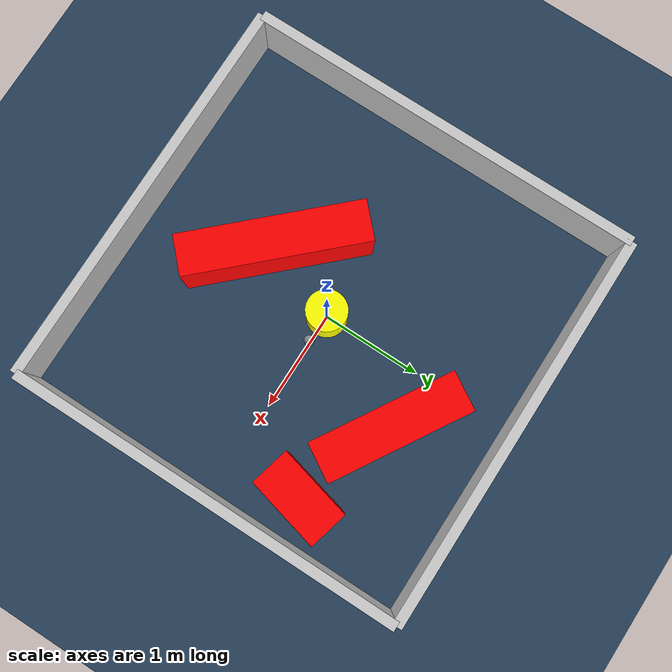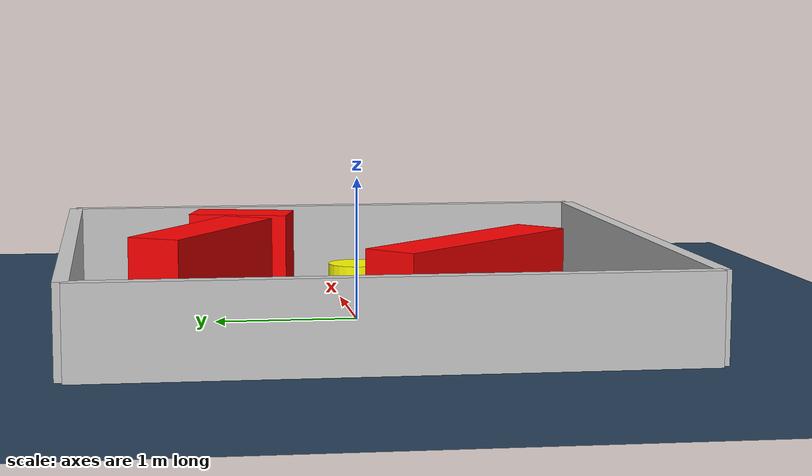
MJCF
<?xml version="1.0" ?>
<mujoco model="generated_environment">
  <option timestep="0.01" integrator="RK4" cone="elliptic"/>
  <default>
    <geom density="1"/>
  </default>
  <asset>
    <texture builtin="gradient" height="3072" rgb1="0.3 0.5 0.7" rgb2="0 0 0" type="skybox" width="512"/>
    <texture builtin="checker" height="300" mark="edge" markrgb="0.8 0.8 0.8" name="groundplane" rgb1="0.2 0.3 0.4" rgb2="0.1 0.2 0.3" type="2d" width="300"/>
    <material name="groundplane" reflectance="0.2" texrepeat="5 5" texture="groundplane" texuniform="true"/>
    <material name="robot" rgba="0.0 1.0 0.0 1"/>
  </asset>
  <worldbody>
    <light dir="0 0 -1" directional="true" pos="0 0 1.5"/>
    <geom condim="4" friction="1.0 0.005 0.001" material="groundplane" name="floor" size="0 0 0.05" type="plane"/>
    <body name="walls">
      <geom name="wall_1" condim="4" pos="-2.0 0.0 0.3" rgba="0.800000011920929 0.800000011920929 0.800000011920929 1.0" size="0.05 2.0 0.3" type="box"/>
      <geom name="wall_2" condim="4" pos="2.0 0.0 0.3" rgba="0.800000011920929 0.800000011920929 0.800000011920929 1.0" size="0.05 2.0 0.3" type="box"/>
      <geom name="wall_3" condim="4" pos="0.0 -2.0 0.3" rgba="0.800000011920929 0.800000011920929 0.800000011920929 1.0" size="2.0 0.05 0.3" type="box"/>
      <geom name="wall_4" condim="4" pos="0.0 2.0 0.3" rgba="0.800000011920929 0.800000011920929 0.800000011920929 1.0" size="2.0 0.05 0.3" type="box"/>
    </body>
    <body name="robot">
      <joint name="joint_x" type="slide" pos="0 0 0" axis="1 0 0"/>
      <joint name="joint_y" type="slide" pos="0 0 0" axis="0 1 0"/>
      <geom name="robot" type="sphere" pos="0.3 0.0 0.2" size="0.05" mass="5." friction="1.0 0.005 0.0001" condim="4" rgba="0.5 0.5 0.5 1.0"/>
      <site name="sensor_ball"/>
    </body>
    <body name="obstacle_movable_1">
      <geom name="obstacle_movable_1" condim="4" pos="0.0 0.0 0.2" euler="0 0 0.0" friction="1.0 0.005 0.001" rgba="1.0 1.0 0.0 1.0" size="0.2 0.2 0.0" type="cylinder" mass="0.1"/>
      <joint type="free"/>
    </body>
    <body name="obstacle_2_static">
      <geom name="obstacle_2_static" condim="4" pos="1.5480836237458617 0.708792360959827 0.3" euler="0 0 75.95399766278277" friction="1.0 0.005 0.001" rgba="1 0 0 1" size="0.37845825347489015 0.2 0.3" type="box"/>
    </body>
    <body name="obstacle_3_static">
      <geom name="obstacle_3_static" condim="4" pos="-0.2752528831489399 -0.748872804446052 0.3" euler="0 0 133.45774836658362" friction="1.0 0.005 0.001" rgba="1 0 0 1" size="0.8955959978721684 0.2 0.3" type="box"/>
    </body>
    <body name="obstacle_4_static">
      <geom name="obstacle_4_static" condim="4" pos="0.5855044768509514 1.056133552407389 0.3" euler="0 0 148.85695783288122" friction="1.0 0.005 0.001" rgba="1 0 0 1" size="0.7241406462172812 0.2 0.3" type="box"/>
    </body>
  </worldbody>
  <actuator>
    <motor name="actuator_x" joint="joint_x" gear="1" ctrlrange="-1 1"/>
    <motor name="actuator_y" joint="joint_y" gear="1" ctrlrange="-1 1"/>
  </actuator>
</mujoco>
